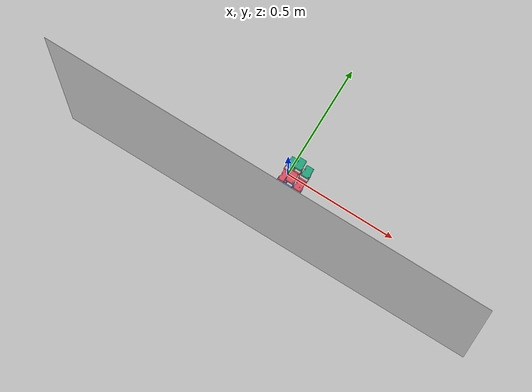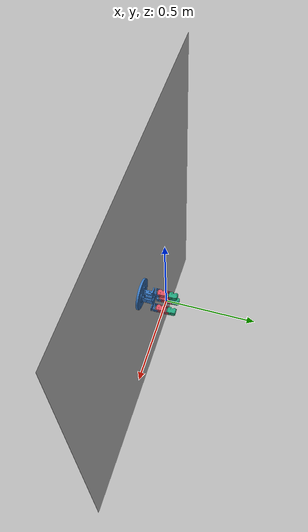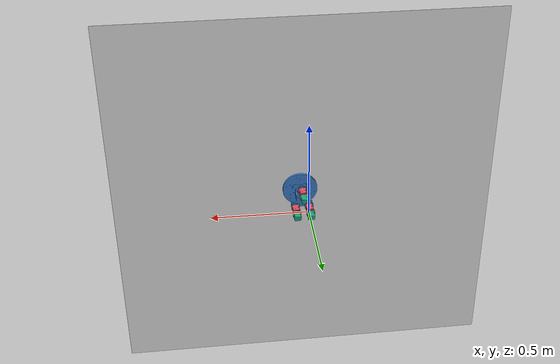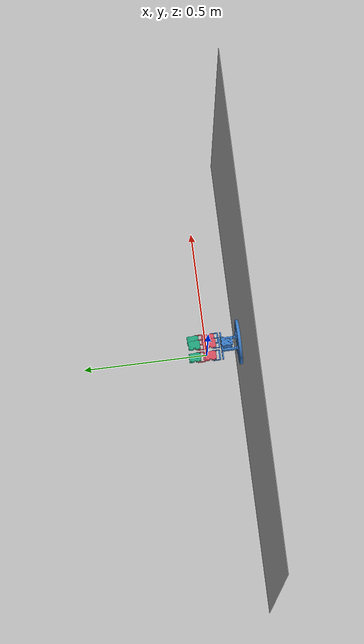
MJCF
<mujoco model="tri_hand_scene">
  <include file="hand.xml"/>

  <statistic center="0.03 -0.03 0.06" extent="0.35"/>
  <visual>
    <headlight ambient="0.4 0.4 0.4" diffuse="0.6 0.6 0.6"/>
  </visual>

  <asset>
    <material name="grid" rgba="0.85 0.85 0.85 1" reflectance="0.05"/>
  </asset>

  <worldbody>
    <camera name="iso" pos="0.32 0.16 0.30" xyaxes="0.6376 0 -0.7704 -0.3323 0.9022 -0.2750"/>

    <!-- 중력이 -Y이므로 바닥 평면의 법선을 +Y로 (zaxis). 팜 원판(y=-0.1395) 아래에 배치 -->
    <geom name="floor" type="plane" size="1 1 0.05" pos="0 -0.16 0" zaxis="0 1 0"
          material="grid" contype="1" conaffinity="1"/>

  </worldbody>
</mujoco>

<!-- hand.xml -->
<mujoco model="tri_hand">
  <compiler angle="radian" meshdir="meshes" autolimits="true"/>
  <option gravity="0 -9.81 0" integrator="implicitfast" timestep="0.002"/>

  <asset>
    <mesh name="palm" file="palm.stl" scale="0.001 0.001 0.001"/>
    <mesh name="actuator" file="actuator.stl" scale="0.001 0.001 0.001"/>
    <mesh name="hinge_frame" file="hinge_frame.stl" scale="0.001 0.001 0.001"/>
  </asset>

  <default>
    <joint type="hinge" axis="1 0 0" range="-1.5708 1.5708" limited="true" damping="0.15" armature="0.01"/>

    <!-- 시각용: 원본 STL. 충돌 없음, group 1 -->
    <default class="visual">
      <geom type="mesh" density="0" contype="0" conaffinity="0" group="1"/>
    </default>

    <!-- 충돌용: 단순 프리미티브. group 3 (뷰어에서 '3' 키로 토글) -->
    <default class="collision">
      <geom density="0" contype="1" conaffinity="1" group="3"
            friction="1.0 0.005 0.0001" rgba="1 0.5 0 0.3"/>
    </default>

    <!-- XL430-W250-T 대응: kp는 기존값 유지, kv 추가로 오버슈트 억제 -->
    <position kp="12" kv="0.5" forcerange="-1.4 1.4" ctrlrange="-1.5708 1.5708"/>
  </default>

  <worldbody>
    <light pos="0 1 0" dir="0 -1 0"/>

    <!-- ===== Palm (고정) ===== -->
    <geom name="palm" class="visual" mesh="palm" rgba="0.22 0.47 0.76 1"/>
    <!-- 팜 충돌 근사 (palm.stl 단면에서 추출, 단위 m) -->
    <geom name="palm_disc"      class="collision" type="cylinder" size="0.090"
          fromto="0.030 -0.1395 0.058  0.030 -0.1280 0.058"/>
    <geom name="palm_hub"       class="collision" type="box"
          pos="0.0298 -0.0950 0.0600" size="0.0265 0.0310 0.0360"/>
    <geom name="palm_bracket_A" class="collision" type="box"
          pos="0.0298 -0.0651 0.1070" size="0.0185 0.0030 0.0170"/>
    <geom name="palm_bracket_BC" class="collision" type="box"
          pos="0.0298 -0.0655 0.0220" size="0.0550 0.0030 0.0260"/>

    <!-- ===== Finger A ===== -->
    <!-- Hinge Frame 1 (Palm 베이스에 고정) -->
    <geom name="A_frame1" class="visual" mesh="hinge_frame"
          pos="0.0290 -0.0155 0.1100" euler="0 0 3.14159" rgba="0.22 0.47 0.76 1"/>

    <body name="A_link1" pos="0.0290 -0.0155 0.1100">
      <joint name="A_j1" pos="0 -0.011475 0"/>
      <inertial pos="0 0.015 0" mass="0.07" diaginertia="2.773e-05 1.486e-05 3.344e-05"/>
      <geom name="A_actuator1" class="visual" mesh="actuator" euler="0 0 3.14159" rgba="0.82 0.29 0.36 1"/>
      <geom class="collision" type="box" pos="0.00134 0.00052 -0.00003" size="0.01895 0.02325 0.01425"/>
      <!-- Hinge Frame 2 (Actuator 1 상단에 고정 결합) -->
      <geom name="A_frame2" class="visual" mesh="hinge_frame" pos="0 0.0633 0" euler="0 0 3.14159" rgba="0.82 0.29 0.36 1"/>

      <body name="A_link2" pos="0 0.0633 0">
        <joint name="A_j2" pos="0 -0.011475 0"/>
        <inertial pos="0 0.015 0" mass="0.07" diaginertia="2.773e-05 1.486e-05 3.344e-05"/>
        <geom name="A_actuator2" class="visual" mesh="actuator" euler="0 0 3.14159" rgba="0.12 0.62 0.47 1"/>
        <geom class="collision" type="box" pos="0.00134 0.00052 -0.00003" size="0.01895 0.02325 0.01425"/>
      </body>
    </body>

    <!-- ===== Finger B ===== -->
    <!-- Hinge Frame 1 (Palm 베이스에 고정) -->
    <geom name="B_frame1" class="visual" mesh="hinge_frame"
          pos="-0.0050 -0.0155 0.0100" euler="0 0 3.14159" rgba="0.22 0.47 0.76 1"/>

    <body name="B_link1" pos="-0.0050 -0.0155 0.0100">
      <joint name="B_j1" pos="0 -0.011475 0"/>
      <inertial pos="0 0.015 0" mass="0.07" diaginertia="2.773e-05 1.486e-05 3.344e-05"/>
      <geom name="B_actuator1" class="visual" mesh="actuator" euler="0 0 3.14159" rgba="0.82 0.29 0.36 1"/>
      <geom class="collision" type="box" pos="0.00134 0.00052 -0.00003" size="0.01895 0.02325 0.01425"/>
      <!-- Hinge Frame 2 (Actuator 1 상단에 고정 결합) -->
      <geom name="B_frame2" class="visual" mesh="hinge_frame" pos="0 0.0633 0" euler="0 0 3.14159" rgba="0.82 0.29 0.36 1"/>

      <body name="B_link2" pos="0 0.0633 0">
        <joint name="B_j2" pos="0 -0.011475 0"/>
        <inertial pos="0 0.015 0" mass="0.07" diaginertia="2.773e-05 1.486e-05 3.344e-05"/>
        <geom name="B_actuator2" class="visual" mesh="actuator" euler="0 0 3.14159" rgba="0.12 0.62 0.47 1"/>
        <geom class="collision" type="box" pos="0.00134 0.00052 -0.00003" size="0.01895 0.02325 0.01425"/>
      </body>
    </body>

    <!-- ===== Finger C ===== -->
    <!-- Hinge Frame 1 (Palm 베이스에 고정) -->
    <geom name="C_frame1" class="visual" mesh="hinge_frame"
          pos="0.0650 -0.0155 0.0100" euler="0 0 3.14159" rgba="0.22 0.47 0.76 1"/>

    <body name="C_link1" pos="0.0650 -0.0155 0.0100">
      <joint name="C_j1" pos="0 -0.011475 0"/>
      <inertial pos="0 0.015 0" mass="0.07" diaginertia="2.773e-05 1.486e-05 3.344e-05"/>
      <geom name="C_actuator1" class="visual" mesh="actuator" euler="0 0 3.14159" rgba="0.82 0.29 0.36 1"/>
      <geom class="collision" type="box" pos="0.00134 0.00052 -0.00003" size="0.01895 0.02325 0.01425"/>
      <!-- Hinge Frame 2 (Actuator 1 상단에 고정 결합) -->
      <geom name="C_frame2" class="visual" mesh="hinge_frame" pos="0 0.0633 0" euler="0 0 3.14159" rgba="0.82 0.29 0.36 1"/>

      <body name="C_link2" pos="0 0.0633 0">
        <joint name="C_j2" pos="0 -0.011475 0"/>
        <inertial pos="0 0.015 0" mass="0.07" diaginertia="2.773e-05 1.486e-05 3.344e-05"/>
        <geom name="C_actuator2" class="visual" mesh="actuator" euler="0 0 3.14159" rgba="0.12 0.62 0.47 1"/>
        <geom class="collision" type="box" pos="0.00134 0.00052 -0.00003" size="0.01895 0.02325 0.01425"/>
      </body>
    </body>
  </worldbody>

  <actuator>
    <position name="A_j1_act" joint="A_j1"/>
    <position name="A_j2_act" joint="A_j2"/>
    <position name="B_j1_act" joint="B_j1"/>
    <position name="B_j2_act" joint="B_j2"/>
    <position name="C_j1_act" joint="C_j1"/>
    <position name="C_j2_act" joint="C_j2"/>
  </actuator>
</mujoco>
